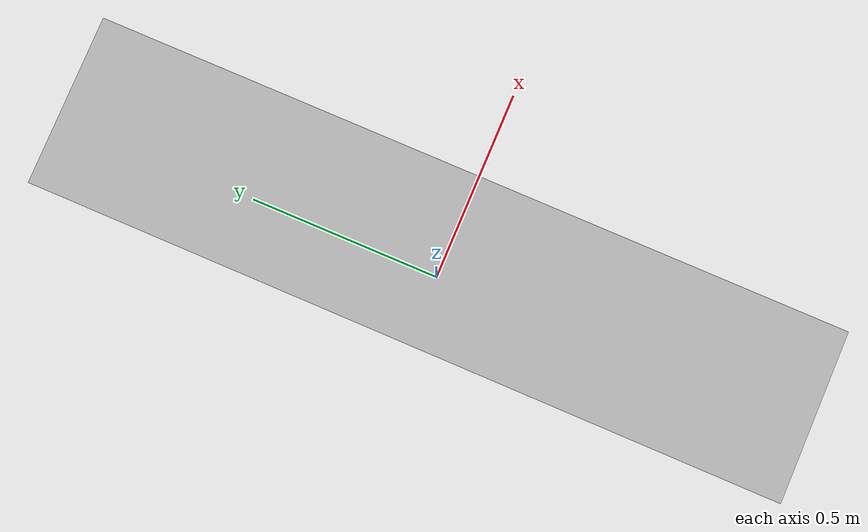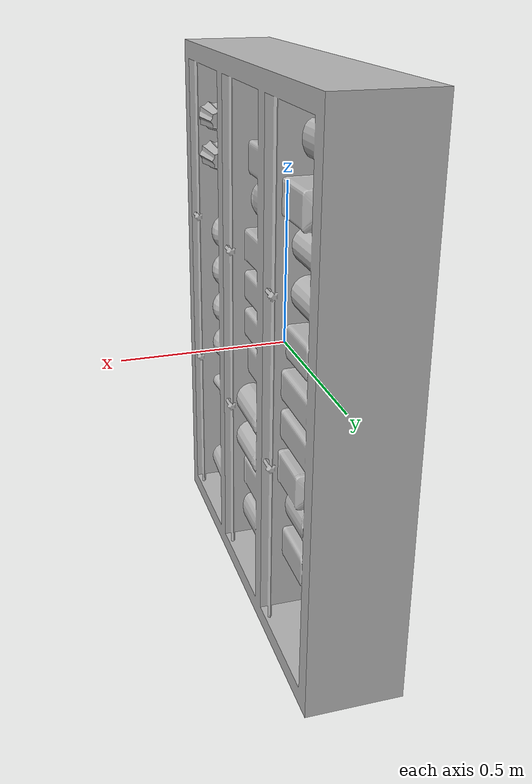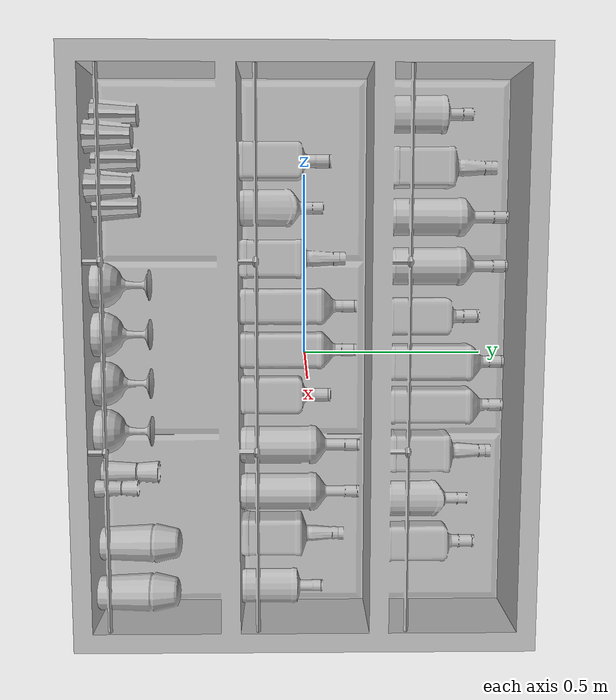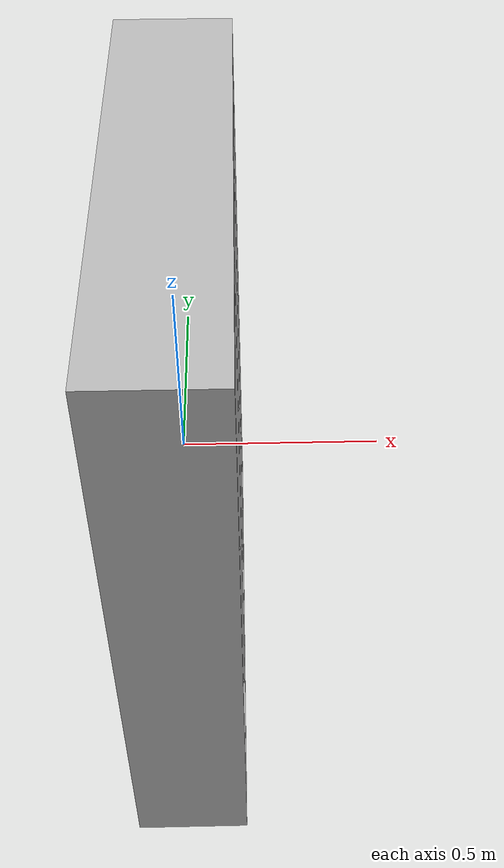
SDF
<?xml version="1.0"?>
<sdf version="1.6">
  <model name="bar_bottles">
    <static>true</static>
    <link name="l">
      <visual name="v">
        <pose>0.0662 -0.6865 -0.0243 0 0 0</pose>
        <geometry>
          <mesh>
            <uri>model://bar_bottles/meshes/BaeFin.obj</uri>
            <scale>0.00147 0.00147 0.00147</scale>
          </mesh>
        </geometry>
      </visual>
    </link>
  </model>
</sdf>
